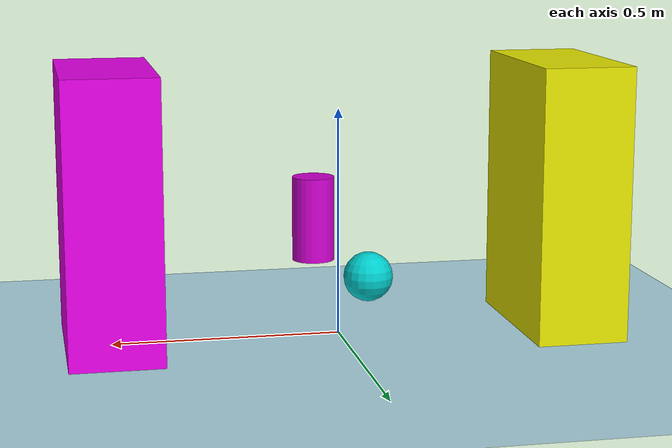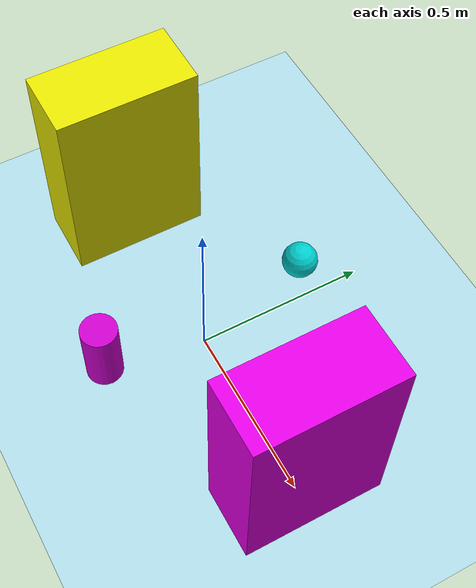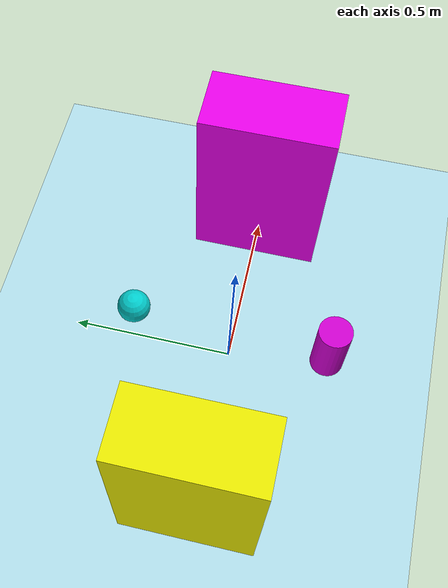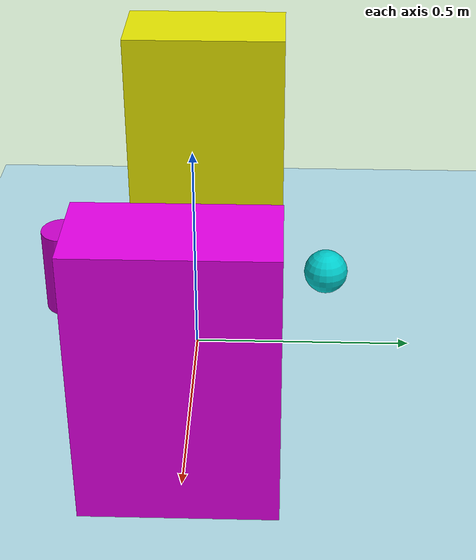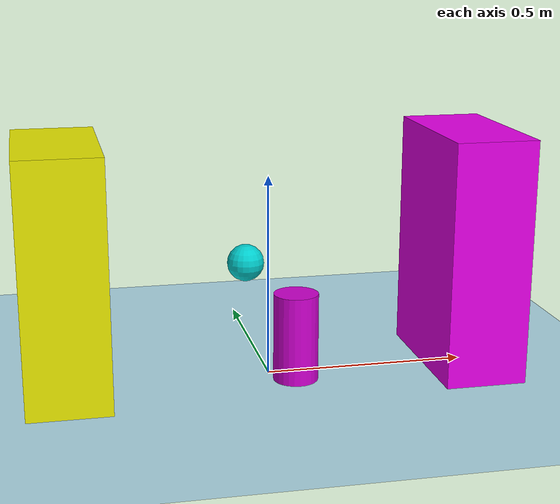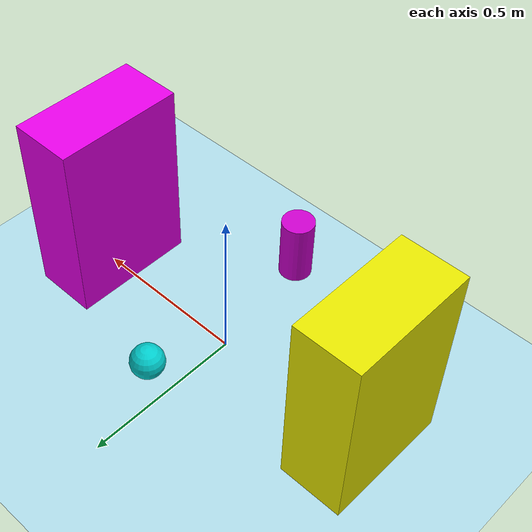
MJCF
<mujoco>
	<worldbody>
    <light diffuse=".8 .8 .8" pos="0 0 3" dir="0 0 -1"/>
    <light diffuse=".3 .3 .3" pos="2 0 2" dir="-1 0 -1"/>
		<geom type="plane" size="2 2 0.1" rgba="0.68 0.85 0.90 1"/>
		<body pos="-0.5 0 .3">
			<joint type="free"/>
			<geom type="box" size=".1 .2 .3" rgba=".9 .9 0 1"/>
			<camera name="robot_camera" pos="0.5 0 0.3" euler="0 -90 -90"/>
		</body>
		<body pos="0.5 0 .3">
			<geom type="box" size=".1 .2 .3" rgba=".9 0 .9 1"/>
		</body>
		<body pos="0 0.3 .2">
			<geom type="sphere" size=".05" rgba="0 .8 .8 1"/>
		</body>
		<body pos="0 -0.3 .2">
			<geom type="cylinder" size=".05 .1" rgba=".8 0 .8 1"/>
		</body>
		<camera name="scene_camera" pos="0 0 2" euler="0 0 0"/>
	</worldbody>
</mujoco>
